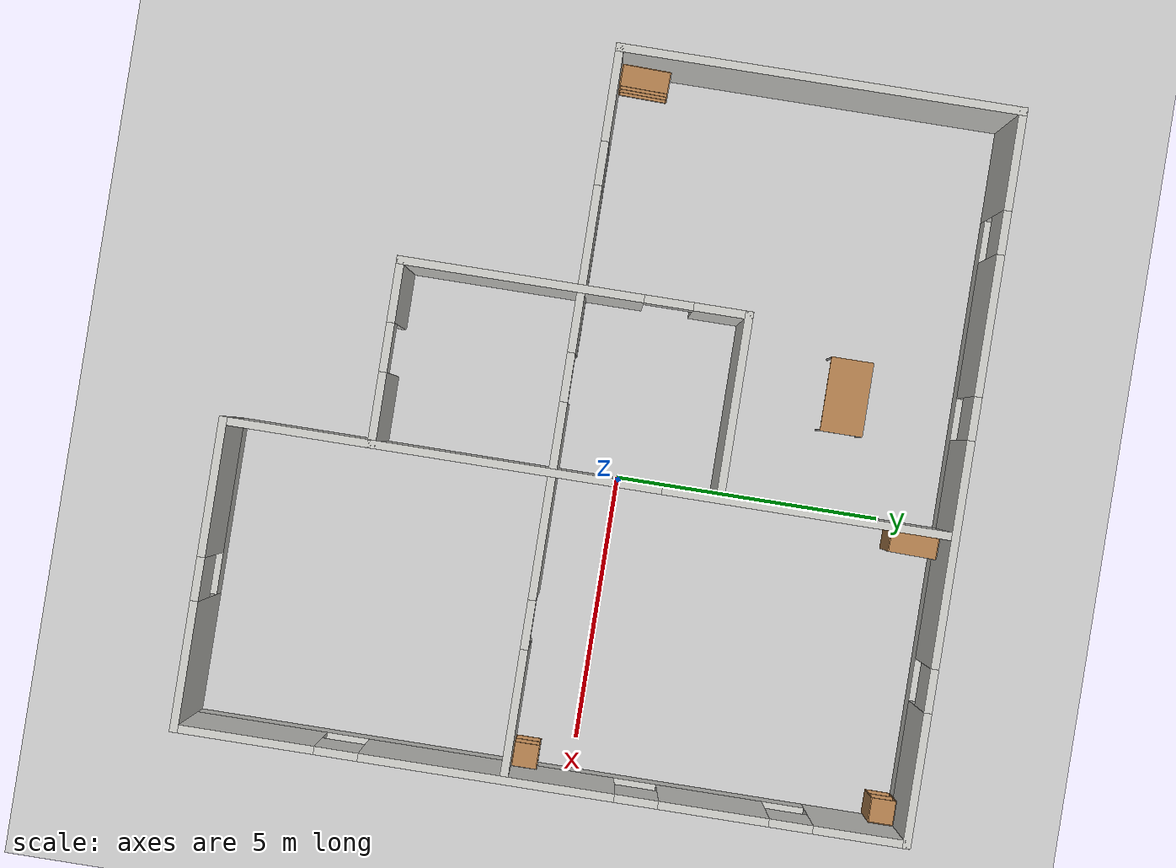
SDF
<sdf version="1.6">
 <world name="default">
  <light name="sun" type="directional">
   <pose>0 0 10 0 -0 0</pose>
   <diffuse>0.8 0.8 0.8 1</diffuse>
   <specular>0.1 0.1 0.1 1</specular>
   <attenuation>
    <range>1000</range>
    <constant>0.9</constant>
    <linear>0.01</linear>
    <quadratic>0.001</quadratic>
   </attenuation>
   <direction>-0.5 0.5 -1</direction>
  </light>
  <model name="ground_plane">
   <static>1</static>
   <link name="link">
    <collision name="collision">
     <geometry><plane><normal>0 0 1</normal><size>100 100</size></plane></geometry>
     <surface><friction><ode><mu>100</mu><mu2>50</mu2></ode></friction></surface>
    </collision>
    <visual name="visual">
     <cast_shadows>0</cast_shadows>
     <geometry><plane><normal>0 0 1</normal><size>100 100</size></plane></geometry>
     <material>
      <script><uri>file://media/materials/scripts/gazebo.material</uri><name>Gazebo/Grey</name></script>
     </material>
    </visual>
   </link>
  </model>
  <gravity>0 0 -9.8</gravity>
  <magnetic_field>6e-06 2.3e-05 -4.2e-05</magnetic_field>
  <atmosphere type="adiabatic"/>
  <physics name="default_physics" default="0" type="ode">
   <max_step_size>0.001</max_step_size>
   <real_time_factor>1</real_time_factor>
   <real_time_update_rate>1000</real_time_update_rate>
  </physics>
  <scene><ambient>0.4 0.4 0.4 1</ambient><background>0.7 0.7 0.7 1</background><shadows>1</shadows></scene>
  <spherical_coordinates>
   <surface_model>EARTH_WGS84</surface_model>
   <latitude_deg>0</latitude_deg>
   <longitude_deg>0</longitude_deg>
   <elevation>0</elevation>
   <heading_deg>0</heading_deg>
  </spherical_coordinates>
  <model name="Robot_Evi">
   <pose>-1.01369 -0.51625 0 0 -0 0</pose>
   <link name="Wall_1">
    <pose>0 6.675 0 0 -0 0</pose>
    <visual name="Wall_1_Visual_0">
     <pose>-5.80687 0 1.25 0 -0 0</pose>
     <geometry><box><size>1.88626 0.15 2.5</size></box></geometry>
     <material>
      <script><uri>file://media/materials/scripts/gazebo.material</uri><name>Gazebo/CeilingTiled</name></script>
      <ambient>1 1 1 1</ambient>
     </material>
    </visual>
    <collision name="Wall_1_Collision_0">
     <geometry><box><size>1.88626 0.15 2.5</size></box></geometry>
     <pose>-5.80687 0 1.25 0 -0 0</pose>
    </collision>
    <visual name="Wall_1_Visual_1">
     <pose>0.943132 0 0.25 0 -0 0</pose>
     <geometry><box><size>11.6137 0.15 0.5</size></box></geometry>
     <material>
      <script><uri>file://media/materials/scripts/gazebo.material</uri><name>Gazebo/CeilingTiled</name></script>
      <ambient>1 1 1 1</ambient>
     </material>
    </visual>
    <collision name="Wall_1_Collision_1">
     <geometry><box><size>11.6137 0.15 0.5</size></box></geometry>
     <pose>0.943132 0 0.25 0 -0 0</pose>
    </collision>
    <visual name="Wall_1_Visual_2">
     <pose>-2.76953 0 1.5 0 -0 0</pose>
     <geometry><box><size>2.58841 0.15 2</size></box></geometry>
     <material>
      <script><uri>file://media/materials/scripts/gazebo.material</uri><name>Gazebo/CeilingTiled</name></script>
      <ambient>1 1 1 1</ambient>
     </material>
    </visual>
    <collision name="Wall_1_Collision_2">
     <geometry><box><size>2.58841 0.15 2</size></box></geometry>
     <pose>-2.76953 0 1.5 0 -0 0</pose>
    </collision>
    <visual name="Wall_1_Visual_3">
     <pose>1.40344 0 1.5 0 -0 0</pose>
     <geometry><box><size>4.15754 0.15 2</size></box></geometry>
     <material>
      <script><uri>file://media/materials/scripts/gazebo.material</uri><name>Gazebo/CeilingTiled</name></script>
      <ambient>1 1 1 1</ambient>
     </material>
    </visual>
    <collision name="Wall_1_Collision_3">
     <geometry><box><size>4.15754 0.15 2</size></box></geometry>
     <pose>1.40344 0 1.5 0 -0 0</pose>
    </collision>
    <visual name="Wall_1_Visual_4">
     <pose>5.5161 0 1.5 0 -0 0</pose>
     <geometry><box><size>2.46779 0.15 2</size></box></geometry>
     <material>
      <script><uri>file://media/materials/scripts/gazebo.material</uri><name>Gazebo/CeilingTiled</name></script>
      <ambient>1 1 1 1</ambient>
     </material>
    </visual>
    <collision name="Wall_1_Collision_4">
     <geometry><box><size>2.46779 0.15 2</size></box></geometry>
     <pose>5.5161 0 1.5 0 -0 0</pose>
    </collision>
    <visual name="Wall_1_Visual_5">
     <pose>-4.46374 0 1.9 0 -0 0</pose>
     <geometry><box><size>0.8 0.15 1.2</size></box></geometry>
     <material>
      <script><uri>file://media/materials/scripts/gazebo.material</uri><name>Gazebo/CeilingTiled</name></script>
      <ambient>1 1 1 1</ambient>
     </material>
    </visual>
    <collision name="Wall_1_Collision_5">
     <geometry><box><size>0.8 0.15 1.2</size></box></geometry>
     <pose>-4.46374 0 1.9 0 -0 0</pose>
    </collision>
    <visual name="Wall_1_Visual_6">
     <pose>-1.07533 0 1.9 0 -0 0</pose>
     <geometry><box><size>0.8 0.15 1.2</size></box></geometry>
     <material>
      <script><uri>file://media/materials/scripts/gazebo.material</uri><name>Gazebo/CeilingTiled</name></script>
      <ambient>1 1 1 1</ambient>
     </material>
    </visual>
    <collision name="Wall_1_Collision_6">
     <geometry><box><size>0.8 0.15 1.2</size></box></geometry>
     <pose>-1.07533 0 1.9 0 -0 0</pose>
    </collision>
    <visual name="Wall_1_Visual_7">
     <pose>3.88221 0 1.9 0 -0 0</pose>
     <geometry><box><size>0.8 0.15 1.2</size></box></geometry>
     <material>
      <script><uri>file://media/materials/scripts/gazebo.material</uri><name>Gazebo/CeilingTiled</name></script>
      <ambient>1 1 1 1</ambient>
     </material>
    </visual>
    <collision name="Wall_1_Collision_7">
     <geometry><box><size>0.8 0.15 1.2</size></box></geometry>
     <pose>3.88221 0 1.9 0 -0 0</pose>
    </collision>
   </link>
   <link name="Wall_10">
    <pose>3.875 -6.675 0 0 -0 3.14159</pose>
    <visual name="Wall_10_Visual_0">
     <pose>-1.68077 0 1.25 0 -0 0</pose>
     <geometry><box><size>2.38847 0.15 2.5</size></box></geometry>
     <material>
      <script><uri>file://media/materials/scripts/gazebo.material</uri><name>Gazebo/CeilingTiled</name></script>
      <ambient>1 1 1 1</ambient>
     </material>
    </visual>
    <collision name="Wall_10_Collision_0">
     <geometry><box><size>2.38847 0.15 2.5</size></box></geometry>
     <pose>-1.68077 0 1.25 0 -0 0</pose>
    </collision>
    <visual name="Wall_10_Visual_1">
     <pose>1.19423 0 0.25 0 -0 0</pose>
     <geometry><box><size>3.36153 0.15 0.5</size></box></geometry>
     <material>
      <script><uri>file://media/materials/scripts/gazebo.material</uri><name>Gazebo/CeilingTiled</name></script>
      <ambient>1 1 1 1</ambient>
     </material>
    </visual>
    <collision name="Wall_10_Collision_1">
     <geometry><box><size>3.36153 0.15 0.5</size></box></geometry>
     <pose>1.19423 0 0.25 0 -0 0</pose>
    </collision>
    <visual name="Wall_10_Visual_2">
     <pose>1.59423 0 1.5 0 -0 0</pose>
     <geometry><box><size>2.56153 0.15 2</size></box></geometry>
     <material>
      <script><uri>file://media/materials/scripts/gazebo.material</uri><name>Gazebo/CeilingTiled</name></script>
      <ambient>1 1 1 1</ambient>
     </material>
    </visual>
    <collision name="Wall_10_Collision_2">
     <geometry><box><size>2.56153 0.15 2</size></box></geometry>
     <pose>1.59423 0 1.5 0 -0 0</pose>
    </collision>
    <visual name="Wall_10_Visual_3">
     <pose>-0.086531 0 1.9 0 -0 0</pose>
     <geometry><box><size>0.8 0.15 1.2</size></box></geometry>
     <material>
      <script><uri>file://media/materials/scripts/gazebo.material</uri><name>Gazebo/CeilingTiled</name></script>
      <ambient>1 1 1 1</ambient>
     </material>
    </visual>
    <collision name="Wall_10_Collision_3">
     <geometry><box><size>0.8 0.15 1.2</size></box></geometry>
     <pose>-0.086531 0 1.9 0 -0 0</pose>
    </collision>
   </link>
   <link name="Wall_11">
    <pose>1.075 0 0 0 -0 1.5708</pose>
    <visual name="Wall_11_Visual_0">
     <pose>-3.16298 0 1.25 0 -0 0</pose>
     <geometry><box><size>7.17404 0.15 2.5</size></box></geometry>
     <material>
      <script><uri>file://media/materials/scripts/gazebo.material</uri><name>Gazebo/CeilingTiled</name></script>
      <ambient>1 1 1 1</ambient>
     </material>
    </visual>
    <collision name="Wall_11_Collision_0">
     <geometry><box><size>7.17404 0.15 2.5</size></box></geometry>
     <pose>-3.16298 0 1.25 0 -0 0</pose>
    </collision>
    <visual name="Wall_11_Visual_1">
     <pose>4.03702 0 1.25 0 -0 0</pose>
     <geometry><box><size>5.42596 0.15 2.5</size></box></geometry>
     <material>
      <script><uri>file://media/materials/scripts/gazebo.material</uri><name>Gazebo/CeilingTiled</name></script>
      <ambient>1 1 1 1</ambient>
     </material>
    </visual>
    <collision name="Wall_11_Collision_1">
     <geometry><box><size>5.42596 0.15 2.5</size></box></geometry>
     <pose>4.03702 0 1.25 0 -0 0</pose>
    </collision>
    <visual name="Wall_11_Visual_2">
     <pose>0.87404 0 2.25 0 -0 0</pose>
     <geometry><box><size>0.9 0.15 0.5</size></box></geometry>
     <material>
      <script><uri>file://media/materials/scripts/gazebo.material</uri><name>Gazebo/CeilingTiled</name></script>
      <ambient>1 1 1 1</ambient>
     </material>
    </visual>
    <collision name="Wall_11_Collision_2">
     <geometry><box><size>0.9 0.15 0.5</size></box></geometry>
     <pose>0.87404 0 2.25 0 -0 0</pose>
    </collision>
   </link>
   <link name="Wall_13">
    <collision name="Wall_13_Collision">
     <geometry><box><size>3.5 0.15 2.5</size></box></geometry>
     <pose>0 0 1.25 0 -0 0</pose>
    </collision>
    <visual name="Wall_13_Visual">
     <pose>0 0 1.25 0 -0 0</pose>
     <geometry><box><size>3.5 0.15 2.5</size></box></geometry>
     <material>
      <script><uri>file://media/materials/scripts/gazebo.material</uri><name>Gazebo/CeilingTiled</name></script>
      <ambient>1 1 1 1</ambient>
     </material>
    </visual>
    <pose>-0.602168 2.38049 0 0 -0 3.14159</pose>
   </link>
   <link name="Wall_14">
    <pose>-2.27717 -0.794511 0 0 0 -1.5708</pose>
    <visual name="Wall_14_Visual_0">
     <pose>-2.7067 0 1.25 0 -0 0</pose>
     <geometry><box><size>1.08659 0.15 2.5</size></box></geometry>
     <material>
      <script><uri>file://media/materials/scripts/gazebo.material</uri><name>Gazebo/CeilingTiled</name></script>
      <ambient>1 1 1 1</ambient>
     </material>
    </visual>
    <collision name="Wall_14_Collision_0">
     <geometry><box><size>1.08659 0.15 2.5</size></box></geometry>
     <pose>-2.7067 0 1.25 0 -0 0</pose>
    </collision>
    <visual name="Wall_14_Visual_1">
     <pose>0.993296 0 1.25 0 -0 0</pose>
     <geometry><box><size>4.51341 0.15 2.5</size></box></geometry>
     <material>
      <script><uri>file://media/materials/scripts/gazebo.material</uri><name>Gazebo/CeilingTiled</name></script>
      <ambient>1 1 1 1</ambient>
     </material>
    </visual>
    <collision name="Wall_14_Collision_1">
     <geometry><box><size>4.51341 0.15 2.5</size></box></geometry>
     <pose>0.993296 0 1.25 0 -0 0</pose>
    </collision>
    <visual name="Wall_14_Visual_2">
     <pose>-1.71341 0 2.25 0 -0 0</pose>
     <geometry><box><size>0.9 0.15 0.5</size></box></geometry>
     <material>
      <script><uri>file://media/materials/scripts/gazebo.material</uri><name>Gazebo/CeilingTiled</name></script>
      <ambient>1 1 1 1</ambient>
     </material>
    </visual>
    <collision name="Wall_14_Collision_2">
     <geometry><box><size>0.9 0.15 0.5</size></box></geometry>
     <pose>-1.71341 0 2.25 0 -0 0</pose>
    </collision>
   </link>
   <link name="Wall_17">
    <pose>-0.602168 -3.96951 0 0 -0 0</pose>
    <visual name="Wall_17_Visual_0">
     <pose>-1.14307 0 1.25 0 -0 0</pose>
     <geometry><box><size>1.21385 0.15 2.5</size></box></geometry>
     <material>
      <script><uri>file://media/materials/scripts/gazebo.material</uri><name>Gazebo/CeilingTiled</name></script>
      <ambient>1 1 1 1</ambient>
     </material>
    </visual>
    <collision name="Wall_17_Collision_0">
     <geometry><box><size>1.21385 0.15 2.5</size></box></geometry>
     <pose>-1.14307 0 1.25 0 -0 0</pose>
    </collision>
    <visual name="Wall_17_Visual_1">
     <pose>1.05693 0 1.25 0 -0 0</pose>
     <geometry><box><size>1.38615 0.15 2.5</size></box></geometry>
     <material>
      <script><uri>file://media/materials/scripts/gazebo.material</uri><name>Gazebo/CeilingTiled</name></script>
      <ambient>1 1 1 1</ambient>
     </material>
    </visual>
    <collision name="Wall_17_Collision_1">
     <geometry><box><size>1.38615 0.15 2.5</size></box></geometry>
     <pose>1.05693 0 1.25 0 -0 0</pose>
    </collision>
    <visual name="Wall_17_Visual_2">
     <pose>-0.086148 0 2.25 0 -0 0</pose>
     <geometry><box><size>0.9 0.15 0.5</size></box></geometry>
     <material>
      <script><uri>file://media/materials/scripts/gazebo.material</uri><name>Gazebo/CeilingTiled</name></script>
      <ambient>1 1 1 1</ambient>
     </material>
    </visual>
    <collision name="Wall_17_Collision_2">
     <geometry><box><size>0.9 0.15 0.5</size></box></geometry>
     <pose>-0.086148 0 2.25 0 -0 0</pose>
    </collision>
   </link>
   <link name="Wall_2">
    <pose>6.675 0 0 0 0 -1.5708</pose>
    <visual name="Wall_2_Visual_0">
     <pose>-5.85484 0 1.25 0 -0 0</pose>
     <geometry><box><size>1.79033 0.15 2.5</size></box></geometry>
     <material>
      <script><uri>file://media/materials/scripts/gazebo.material</uri><name>Gazebo/CeilingTiled</name></script>
      <ambient>1 1 1 1</ambient>
     </material>
    </visual>
    <collision name="Wall_2_Collision_0">
     <geometry><box><size>1.79033 0.15 2.5</size></box></geometry>
     <pose>-5.85484 0 1.25 0 -0 0</pose>
    </collision>
    <visual name="Wall_2_Visual_1">
     <pose>0.895164 0 0.25 0 -0 0</pose>
     <geometry><box><size>11.7097 0.15 0.5</size></box></geometry>
     <material>
      <script><uri>file://media/materials/scripts/gazebo.material</uri><name>Gazebo/CeilingTiled</name></script>
      <ambient>1 1 1 1</ambient>
     </material>
    </visual>
    <collision name="Wall_2_Collision_1">
     <geometry><box><size>11.7097 0.15 0.5</size></box></geometry>
     <pose>0.895164 0 0.25 0 -0 0</pose>
    </collision>
    <visual name="Wall_2_Visual_2">
     <pose>-3.14973 0 1.5 0 -0 0</pose>
     <geometry><box><size>2.01988 0.15 2</size></box></geometry>
     <material>
      <script><uri>file://media/materials/scripts/gazebo.material</uri><name>Gazebo/CeilingTiled</name></script>
      <ambient>1 1 1 1</ambient>
     </material>
    </visual>
    <collision name="Wall_2_Collision_2">
     <geometry><box><size>2.01988 0.15 2</size></box></geometry>
     <pose>-3.14973 0 1.5 0 -0 0</pose>
    </collision>
    <visual name="Wall_2_Visual_3">
     <pose>0.994214 0 1.5 0 -0 0</pose>
     <geometry><box><size>4.66801 0.15 2</size></box></geometry>
     <material>
      <script><uri>file://media/materials/scripts/gazebo.material</uri><name>Gazebo/CeilingTiled</name></script>
      <ambient>1 1 1 1</ambient>
     </material>
    </visual>
    <collision name="Wall_2_Collision_3">
     <geometry><box><size>4.66801 0.15 2</size></box></geometry>
     <pose>0.994214 0 1.5 0 -0 0</pose>
    </collision>
    <visual name="Wall_2_Visual_4">
     <pose>5.43911 0 1.5 0 -0 0</pose>
     <geometry><box><size>2.62178 0.15 2</size></box></geometry>
     <material>
      <script><uri>file://media/materials/scripts/gazebo.material</uri><name>Gazebo/CeilingTiled</name></script>
      <ambient>1 1 1 1</ambient>
     </material>
    </visual>
    <collision name="Wall_2_Collision_4">
     <geometry><box><size>2.62178 0.15 2</size></box></geometry>
     <pose>5.43911 0 1.5 0 -0 0</pose>
    </collision>
    <visual name="Wall_2_Visual_5">
     <pose>-4.55967 0 1.9 0 -0 0</pose>
     <geometry><box><size>0.8 0.15 1.2</size></box></geometry>
     <material>
      <script><uri>file://media/materials/scripts/gazebo.material</uri><name>Gazebo/CeilingTiled</name></script>
      <ambient>1 1 1 1</ambient>
     </material>
    </visual>
    <collision name="Wall_2_Collision_5">
     <geometry><box><size>0.8 0.15 1.2</size></box></geometry>
     <pose>-4.55967 0 1.9 0 -0 0</pose>
    </collision>
    <visual name="Wall_2_Visual_6">
     <pose>-1.73979 0 1.9 0 -0 0</pose>
     <geometry><box><size>0.8 0.15 1.2</size></box></geometry>
     <material>
      <script><uri>file://media/materials/scripts/gazebo.material</uri><name>Gazebo/CeilingTiled</name></script>
      <ambient>1 1 1 1</ambient>
     </material>
    </visual>
    <collision name="Wall_2_Collision_6">
     <geometry><box><size>0.8 0.15 1.2</size></box></geometry>
     <pose>-1.73979 0 1.9 0 -0 0</pose>
    </collision>
    <visual name="Wall_2_Visual_7">
     <pose>3.72822 0 1.9 0 -0 0</pose>
     <geometry><box><size>0.8 0.15 1.2</size></box></geometry>
     <material>
      <script><uri>file://media/materials/scripts/gazebo.material</uri><name>Gazebo/CeilingTiled</name></script>
      <ambient>1 1 1 1</ambient>
     </material>
    </visual>
    <collision name="Wall_2_Collision_7">
     <geometry><box><size>0.8 0.15 1.2</size></box></geometry>
     <pose>3.72822 0 1.9 0 -0 0</pose>
    </collision>
   </link>
   <link name="Wall_5">
    <collision name="Wall_5_Collision">
     <geometry><box><size>7.5 0.15 2.5</size></box></geometry>
     <pose>0 0 1.25 0 -0 0</pose>
    </collision>
    <visual name="Wall_5_Visual">
     <pose>0 0 1.25 0 -0 0</pose>
     <geometry><box><size>7.5 0.15 2.5</size></box></geometry>
     <material>
      <script><uri>file://media/materials/scripts/gazebo.material</uri><name>Gazebo/CeilingTiled</name></script>
      <ambient>1 1 1 1</ambient>
     </material>
    </visual>
    <pose>-6.675 3 0 0 0 -1.5708</pose>
   </link>
   <link name="Wall_6">
    <pose>0 -0.675 0 0 -0 0</pose>
    <visual name="Wall_6_Visual_0">
     <pose>-5.85664 0 1.25 0 -0 0</pose>
     <geometry><box><size>1.78672 0.15 2.5</size></box></geometry>
     <material>
      <script><uri>file://media/materials/scripts/gazebo.material</uri><name>Gazebo/CeilingTiled</name></script>
      <ambient>1 1 1 1</ambient>
     </material>
    </visual>
    <collision name="Wall_6_Collision_0">
     <geometry><box><size>1.78672 0.15 2.5</size></box></geometry>
     <pose>-5.85664 0 1.25 0 -0 0</pose>
    </collision>
    <visual name="Wall_6_Visual_1">
     <pose>1.58816 0 1.25 0 -0 0</pose>
     <geometry><box><size>3.60831 0.15 2.5</size></box></geometry>
     <material>
      <script><uri>file://media/materials/scripts/gazebo.material</uri><name>Gazebo/CeilingTiled</name></script>
      <ambient>1 1 1 1</ambient>
     </material>
    </visual>
    <collision name="Wall_6_Collision_1">
     <geometry><box><size>3.60831 0.15 2.5</size></box></geometry>
     <pose>1.58816 0 1.25 0 -0 0</pose>
    </collision>
    <visual name="Wall_6_Visual_2">
     <pose>5.52116 0 1.25 0 -0 0</pose>
     <geometry><box><size>2.45769 0.15 2.5</size></box></geometry>
     <material>
      <script><uri>file://media/materials/scripts/gazebo.material</uri><name>Gazebo/CeilingTiled</name></script>
      <ambient>1 1 1 1</ambient>
     </material>
    </visual>
    <collision name="Wall_6_Collision_2">
     <geometry><box><size>2.45769 0.15 2.5</size></box></geometry>
     <pose>5.52116 0 1.25 0 -0 0</pose>
    </collision>
    <visual name="Wall_6_Visual_3">
     <pose>-3.03964 0 0.25 0 -0 0</pose>
     <geometry><box><size>3.84728 0.15 0.5</size></box></geometry>
     <material>
      <script><uri>file://media/materials/scripts/gazebo.material</uri><name>Gazebo/CeilingTiled</name></script>
      <ambient>1 1 1 1</ambient>
     </material>
    </visual>
    <collision name="Wall_6_Collision_3">
     <geometry><box><size>3.84728 0.15 0.5</size></box></geometry>
     <pose>-3.03964 0 0.25 0 -0 0</pose>
    </collision>
    <visual name="Wall_6_Visual_4">
     <pose>-2.63964 0 1.5 0 -0 0</pose>
     <geometry><box><size>3.04728 0.15 2</size></box></geometry>
     <material>
      <script><uri>file://media/materials/scripts/gazebo.material</uri><name>Gazebo/CeilingTiled</name></script>
      <ambient>1 1 1 1</ambient>
     </material>
    </visual>
    <collision name="Wall_6_Collision_4">
     <geometry><box><size>3.04728 0.15 2</size></box></geometry>
     <pose>-2.63964 0 1.5 0 -0 0</pose>
    </collision>
    <visual name="Wall_6_Visual_5">
     <pose>-4.56328 0 1.9 0 -0 0</pose>
     <geometry><box><size>0.8 0.15 1.2</size></box></geometry>
     <material>
      <script><uri>file://media/materials/scripts/gazebo.material</uri><name>Gazebo/CeilingTiled</name></script>
      <ambient>1 1 1 1</ambient>
     </material>
    </visual>
    <collision name="Wall_6_Collision_5">
     <geometry><box><size>0.8 0.15 1.2</size></box></geometry>
     <pose>-4.56328 0 1.9 0 -0 0</pose>
    </collision>
    <visual name="Wall_6_Visual_6">
     <pose>3.84231 0 2.25 0 -0 0</pose>
     <geometry><box><size>0.9 0.15 0.5</size></box></geometry>
     <material>
      <script><uri>file://media/materials/scripts/gazebo.material</uri><name>Gazebo/CeilingTiled</name></script>
      <ambient>1 1 1 1</ambient>
     </material>
    </visual>
    <collision name="Wall_6_Collision_6">
     <geometry><box><size>0.9 0.15 0.5</size></box></geometry>
     <pose>3.84231 0 2.25 0 -0 0</pose>
    </collision>
    <visual name="Wall_6_Visual_7">
     <pose>-0.665997 0 2.25 0 -0 0</pose>
     <geometry><box><size>0.9 0.15 0.5</size></box></geometry>
     <material>
      <script><uri>file://media/materials/scripts/gazebo.material</uri><name>Gazebo/CeilingTiled</name></script>
      <ambient>1 1 1 1</ambient>
     </material>
    </visual>
    <collision name="Wall_6_Collision_7">
     <geometry><box><size>0.9 0.15 0.5</size></box></geometry>
     <pose>-0.665997 0 2.25 0 -0 0</pose>
    </collision>
   </link>
   <static>1</static>
  </model>
  <model name="bookshelf_clone">
   <static>1</static>
   <link name="link">
    <inertial><mass>1</mass></inertial>
    <collision name="back">
     <pose>0 0.005 0.6 0 -0 0</pose>
     <geometry><box><size>0.9 0.01 1.2</size></box></geometry>
    </collision>
    <visual name="visual1">
     <pose>0 0.005 0.6 0 -0 0</pose>
     <geometry><box><size>0.9 0.01 1.2</size></box></geometry>
     <material>
      <script><uri>file://media/materials/scripts/gazebo.material</uri><name>Gazebo/Wood</name></script>
     </material>
    </visual>
    <collision name="left_side">
     <pose>0.45 -0.195 0.6 0 -0 0</pose>
     <geometry><box><size>0.02 0.4 1.2</size></box></geometry>
    </collision>
    <visual name="visual2">
     <pose>0.45 -0.195 0.6 0 -0 0</pose>
     <geometry><box><size>0.02 0.4 1.2</size></box></geometry>
     <material>
      <script><uri>file://media/materials/scripts/gazebo.material</uri><name>Gazebo/Wood</name></script>
     </material>
    </visual>
    <collision name="right_side">
     <pose>-0.45 -0.195 0.6 0 -0 0</pose>
     <geometry><box><size>0.02 0.4 1.2</size></box></geometry>
    </collision>
    <visual name="visual3">
     <pose>-0.45 -0.195 0.6 0 -0 0</pose>
     <geometry><box><size>0.02 0.4 1.2</size></box></geometry>
     <material>
      <script><uri>file://media/materials/scripts/gazebo.material</uri><name>Gazebo/Wood</name></script>
     </material>
    </visual>
    <collision name="bottom">
     <pose>0 -0.195 0.03 0 -0 0</pose>
     <geometry><box><size>0.88 0.4 0.06</size></box></geometry>
    </collision>
    <visual name="visual4">
     <pose>0 -0.195 0.03 0 -0 0</pose>
     <geometry><box><size>0.88 0.4 0.06</size></box></geometry>
     <material>
      <script><uri>file://media/materials/scripts/gazebo.material</uri><name>Gazebo/Wood</name></script>
     </material>
    </visual>
    <collision name="top">
     <pose>0 -0.195 1.19 0 -0 0</pose>
     <geometry><box><size>0.88 0.4 0.02</size></box></geometry>
    </collision>
    <visual name="visual5">
     <pose>0 -0.195 1.19 0 -0 0</pose>
     <geometry><box><size>0.88 0.4 0.02</size></box></geometry>
     <material>
      <script><uri>file://media/materials/scripts/gazebo.material</uri><name>Gazebo/Wood</name></script>
     </material>
    </visual>
    <collision name="low_shelf">
     <pose>0 -0.195 0.43 0 -0 0</pose>
     <geometry><box><size>0.88 0.4 0.02</size></box></geometry>
    </collision>
    <visual name="visual6">
     <pose>0 -0.195 0.43 0 -0 0</pose>
     <geometry><box><size>0.88 0.4 0.02</size></box></geometry>
     <material>
      <script><uri>file://media/materials/scripts/gazebo.material</uri><name>Gazebo/Wood</name></script>
     </material>
    </visual>
    <collision name="high_shelf">
     <pose>0 -0.195 0.8 0 -0 0</pose>
     <geometry><box><size>0.88 0.4 0.02</size></box></geometry>
    </collision>
    <visual name="visual7">
     <pose>0 -0.195 0.8 0 -0 0</pose>
     <geometry><box><size>0.88 0.4 0.02</size></box></geometry>
     <material>
      <script><uri>file://media/materials/scripts/gazebo.material</uri><name>Gazebo/Wood</name></script>
     </material>
    </visual>
   </link>
   <pose>0.151706 5.62246 0 0 -0 1.55</pose>
  </model>
  <model name="cabinet">
   <static>1</static>
   <link name="cabinet_bottom_plate">
    <inertial>
     <pose>0 0 -1 0 -0 0</pose>
     <inertia><ixx>2.05</ixx><ixy>0</ixy><ixz>0</ixz><iyy>2.05</iyy><iyz>0</iyz><izz>2.05</izz></inertia>
     <mass>25</mass>
    </inertial>
    <collision name="cabinet_bottom_plate_geom">
     <pose>0 0 0.01 0 -0 0</pose>
     <geometry><box><size>0.45 0.45 0.02</size></box></geometry>
    </collision>
    <visual name="cabinet_bottom_plate_geom_visual">
     <pose>0 0 0.01 0 -0 0</pose>
     <geometry><box><size>0.45 0.45 0.02</size></box></geometry>
     <material>
      <script><uri>file://media/materials/scripts/gazebo.material</uri><name>Gazebo/Wood</name></script>
     </material>
    </visual>
    <collision name="cabinet_bottom_plate_geom_cabinet_back_plate">
     <pose>0.235 0 0.51 0 -0 0</pose>
     <geometry><box><size>0.02 0.45 1.02</size></box></geometry>
    </collision>
    <visual name="cabinet_bottom_plate_geom_cabinet_back_plate_visual">
     <pose>0.235 0 0.51 0 -0 0</pose>
     <geometry><box><size>0.02 0.45 1.02</size></box></geometry>
     <material>
      <script><uri>file://media/materials/scripts/gazebo.material</uri><name>Gazebo/Wood</name></script>
     </material>
    </visual>
    <collision name="cabinet_bottom_plate_geom_cabinet_left_plate">
     <pose>0 0.235 0.51 0 -0 0</pose>
     <geometry><box><size>0.45 0.02 1.02</size></box></geometry>
    </collision>
    <visual name="cabinet_bottom_plate_geom_cabinet_left_plate_visual">
     <pose>0 0.235 0.51 0 -0 0</pose>
     <geometry><box><size>0.45 0.02 1.02</size></box></geometry>
     <material>
      <script><uri>file://media/materials/scripts/gazebo.material</uri><name>Gazebo/Wood</name></script>
     </material>
    </visual>
    <collision name="cabinet_bottom_plate_geom_cabinet_middle_plate">
     <pose>0 0 0.51 0 -0 0</pose>
     <geometry><box><size>0.45 0.45 0.02</size></box></geometry>
    </collision>
    <visual name="cabinet_bottom_plate_geom_cabinet_middle_plate_visual">
     <pose>0 0 0.51 0 -0 0</pose>
     <geometry><box><size>0.45 0.45 0.02</size></box></geometry>
     <material>
      <script><uri>file://media/materials/scripts/gazebo.material</uri><name>Gazebo/Wood</name></script>
     </material>
    </visual>
    <collision name="cabinet_bottom_plate_geom_cabinet_right_plate">
     <pose>0 -0.235 0.51 0 -0 0</pose>
     <geometry><box><size>0.45 0.02 1.02</size></box></geometry>
    </collision>
    <visual name="cabinet_bottom_plate_geom_cabinet_right_plate_visual">
     <pose>0 -0.235 0.51 0 -0 0</pose>
     <geometry><box><size>0.45 0.02 1.02</size></box></geometry>
     <material>
      <script><uri>file://media/materials/scripts/gazebo.material</uri><name>Gazebo/Wood</name></script>
     </material>
    </visual>
    <collision name="cabinet_bottom_plate_geom_cabinet_top_plate">
     <pose>0 0 1.01 0 -0 0</pose>
     <geometry><box><size>0.45 0.45 0.02</size></box></geometry>
    </collision>
    <visual name="cabinet_bottom_plate_geom_cabinet_top_plate_visual">
     <pose>0 0 1.01 0 -0 0</pose>
     <geometry><box><size>0.45 0.45 0.02</size></box></geometry>
     <material>
      <script><uri>file://media/materials/scripts/gazebo.material</uri><name>Gazebo/Wood</name></script>
     </material>
    </visual>
   </link>
   <pose>5.34352 5.84367 0 0 -0 0</pose>
  </model>
  <model name="cabinet_0">
   <static>1</static>
   <link name="cabinet_bottom_plate">
    <inertial>
     <pose>0 0 -1 0 -0 0</pose>
     <inertia><ixx>2.05</ixx><ixy>0</ixy><ixz>0</ixz><iyy>2.05</iyy><iyz>0</iyz><izz>2.05</izz></inertia>
     <mass>25</mass>
    </inertial>
    <collision name="cabinet_bottom_plate_geom">
     <pose>0 0 0.01 0 -0 0</pose>
     <geometry><box><size>0.45 0.45 0.02</size></box></geometry>
    </collision>
    <visual name="cabinet_bottom_plate_geom_visual">
     <pose>0 0 0.01 0 -0 0</pose>
     <geometry><box><size>0.45 0.45 0.02</size></box></geometry>
     <material>
      <script><uri>file://media/materials/scripts/gazebo.material</uri><name>Gazebo/Wood</name></script>
     </material>
    </visual>
    <collision name="cabinet_bottom_plate_geom_cabinet_back_plate">
     <pose>0.235 0 0.51 0 -0 0</pose>
     <geometry><box><size>0.02 0.45 1.02</size></box></geometry>
    </collision>
    <visual name="cabinet_bottom_plate_geom_cabinet_back_plate_visual">
     <pose>0.235 0 0.51 0 -0 0</pose>
     <geometry><box><size>0.02 0.45 1.02</size></box></geometry>
     <material>
      <script><uri>file://media/materials/scripts/gazebo.material</uri><name>Gazebo/Wood</name></script>
     </material>
    </visual>
    <collision name="cabinet_bottom_plate_geom_cabinet_left_plate">
     <pose>0 0.235 0.51 0 -0 0</pose>
     <geometry><box><size>0.45 0.02 1.02</size></box></geometry>
    </collision>
    <visual name="cabinet_bottom_plate_geom_cabinet_left_plate_visual">
     <pose>0 0.235 0.51 0 -0 0</pose>
     <geometry><box><size>0.45 0.02 1.02</size></box></geometry>
     <material>
      <script><uri>file://media/materials/scripts/gazebo.material</uri><name>Gazebo/Wood</name></script>
     </material>
    </visual>
    <collision name="cabinet_bottom_plate_geom_cabinet_middle_plate">
     <pose>0 0 0.51 0 -0 0</pose>
     <geometry><box><size>0.45 0.45 0.02</size></box></geometry>
    </collision>
    <visual name="cabinet_bottom_plate_geom_cabinet_middle_plate_visual">
     <pose>0 0 0.51 0 -0 0</pose>
     <geometry><box><size>0.45 0.45 0.02</size></box></geometry>
     <material>
      <script><uri>file://media/materials/scripts/gazebo.material</uri><name>Gazebo/Wood</name></script>
     </material>
    </visual>
    <collision name="cabinet_bottom_plate_geom_cabinet_right_plate">
     <pose>0 -0.235 0.51 0 -0 0</pose>
     <geometry><box><size>0.45 0.02 1.02</size></box></geometry>
    </collision>
    <visual name="cabinet_bottom_plate_geom_cabinet_right_plate_visual">
     <pose>0 -0.235 0.51 0 -0 0</pose>
     <geometry><box><size>0.45 0.02 1.02</size></box></geometry>
     <material>
      <script><uri>file://media/materials/scripts/gazebo.material</uri><name>Gazebo/Wood</name></script>
     </material>
    </visual>
    <collision name="cabinet_bottom_plate_geom_cabinet_top_plate">
     <pose>0 0 1.01 0 -0 0</pose>
     <geometry><box><size>0.45 0.45 0.02</size></box></geometry>
    </collision>
    <visual name="cabinet_bottom_plate_geom_cabinet_top_plate_visual">
     <pose>0 0 1.01 0 -0 0</pose>
     <geometry><box><size>0.45 0.45 0.02</size></box></geometry>
     <material>
      <script><uri>file://media/materials/scripts/gazebo.material</uri><name>Gazebo/Wood</name></script>
     </material>
    </visual>
   </link>
   <pose>5.35728 -0.881665 0 0 -0 0</pose>
  </model>
  <model name="table_0">
   <static>0</static>
   <link name="link">
    <collision name="surface">
     <pose>0 0 1 0 -0 0</pose>
     <geometry><box><size>1.5 0.8 0.03</size></box></geometry>
     <surface><friction><ode><mu>0.6</mu><mu2>0.6</mu2></ode></friction></surface>
    </collision>
    <visual name="visual1">
     <pose>0 0 1 0 -0 0</pose>
     <geometry><box><size>1.4 0.8 0.04</size></box></geometry>
     <material>
      <script><uri>file://media/materials/scripts/gazebo.material</uri><name>Gazebo/Wood</name></script>
     </material>
    </visual>
    <collision name="front_left_leg">
     <pose>0.68 0.38 0.5 0 -0 0</pose>
     <geometry><cylinder><radius>0.02</radius><length>1</length></cylinder></geometry>
    </collision>
    <visual name="front_left_leg">
     <pose>0.68 0.38 0.5 0 -0 0</pose>
     <geometry><cylinder><radius>0.02</radius><length>1</length></cylinder></geometry>
     <material>
      <script><uri>file://media/materials/scripts/gazebo.material</uri><name>Gazebo/Grey</name></script>
     </material>
    </visual>
    <collision name="front_right_leg">
     <pose>0.68 -0.38 0.5 0 -0 0</pose>
     <geometry><cylinder><radius>0.02</radius><length>1</length></cylinder></geometry>
    </collision>
    <visual name="front_right_leg">
     <pose>0.68 -0.38 0.5 0 -0 0</pose>
     <geometry><cylinder><radius>0.02</radius><length>1</length></cylinder></geometry>
     <material>
      <script><uri>file://media/materials/scripts/gazebo.material</uri><name>Gazebo/Grey</name></script>
     </material>
    </visual>
    <collision name="back_right_leg">
     <pose>-0.68 -0.38 0.5 0 -0 0</pose>
     <geometry><cylinder><radius>0.02</radius><length>1</length></cylinder></geometry>
    </collision>
    <visual name="back_right_leg">
     <pose>-0.68 -0.38 0.5 0 -0 0</pose>
     <geometry><cylinder><radius>0.02</radius><length>1</length></cylinder></geometry>
     <material>
      <script><uri>file://media/materials/scripts/gazebo.material</uri><name>Gazebo/Grey</name></script>
     </material>
    </visual>
    <collision name="back_left_leg">
     <pose>-0.68 0.38 0.5 0 -0 0</pose>
     <geometry><cylinder><radius>0.02</radius><length>1</length></cylinder></geometry>
    </collision>
    <visual name="back_left_leg">
     <pose>-0.68 0.38 0.5 0 -0 0</pose>
     <geometry><cylinder><radius>0.02</radius><length>1</length></cylinder></geometry>
     <material>
      <script><uri>file://media/materials/scripts/gazebo.material</uri><name>Gazebo/Grey</name></script>
     </material>
    </visual>
    <inertial>
     <inertia><ixx>1</ixx><ixy>0</ixy><ixz>0</ixz><iyy>1</iyy><iyz>0</iyz><izz>1</izz></inertia>
     <mass>1</mass>
    </inertial>
   </link>
   <pose>-2.17571 3.98401 -1e-06 -1e-06 1e-06 0</pose>
  </model>
  <model name="bookshelf_clone_clone">
   <static>1</static>
   <link name="link">
    <inertial><mass>1</mass></inertial>
    <collision name="back">
     <pose>0 0.005 0.6 0 -0 0</pose>
     <geometry><box><size>0.9 0.01 1.2</size></box></geometry>
    </collision>
    <visual name="visual1">
     <pose>0 0.005 0.6 0 -0 0</pose>
     <geometry><box><size>0.9 0.01 1.2</size></box></geometry>
     <material>
      <script><uri>file://media/materials/scripts/gazebo.material</uri><name>Gazebo/Wood</name></script>
     </material>
    </visual>
    <collision name="left_side">
     <pose>0.45 -0.195 0.6 0 -0 0</pose>
     <geometry><box><size>0.02 0.4 1.2</size></box></geometry>
    </collision>
    <visual name="visual2">
     <pose>0.45 -0.195 0.6 0 -0 0</pose>
     <geometry><box><size>0.02 0.4 1.2</size></box></geometry>
     <material>
      <script><uri>file://media/materials/scripts/gazebo.material</uri><name>Gazebo/Wood</name></script>
     </material>
    </visual>
    <collision name="right_side">
     <pose>-0.45 -0.195 0.6 0 -0 0</pose>
     <geometry><box><size>0.02 0.4 1.2</size></box></geometry>
    </collision>
    <visual name="visual3">
     <pose>-0.45 -0.195 0.6 0 -0 0</pose>
     <geometry><box><size>0.02 0.4 1.2</size></box></geometry>
     <material>
      <script><uri>file://media/materials/scripts/gazebo.material</uri><name>Gazebo/Wood</name></script>
     </material>
    </visual>
    <collision name="bottom">
     <pose>0 -0.195 0.03 0 -0 0</pose>
     <geometry><box><size>0.88 0.4 0.06</size></box></geometry>
    </collision>
    <visual name="visual4">
     <pose>0 -0.195 0.03 0 -0 0</pose>
     <geometry><box><size>0.88 0.4 0.06</size></box></geometry>
     <material>
      <script><uri>file://media/materials/scripts/gazebo.material</uri><name>Gazebo/Wood</name></script>
     </material>
    </visual>
    <collision name="top">
     <pose>0 -0.195 1.19 0 -0 0</pose>
     <geometry><box><size>0.88 0.4 0.02</size></box></geometry>
    </collision>
    <visual name="visual5">
     <pose>0 -0.195 1.19 0 -0 0</pose>
     <geometry><box><size>0.88 0.4 0.02</size></box></geometry>
     <material>
      <script><uri>file://media/materials/scripts/gazebo.material</uri><name>Gazebo/Wood</name></script>
     </material>
    </visual>
    <collision name="low_shelf">
     <pose>0 -0.195 0.43 0 -0 0</pose>
     <geometry><box><size>0.88 0.4 0.02</size></box></geometry>
    </collision>
    <visual name="visual6">
     <pose>0 -0.195 0.43 0 -0 0</pose>
     <geometry><box><size>0.88 0.4 0.02</size></box></geometry>
     <material>
      <script><uri>file://media/materials/scripts/gazebo.material</uri><name>Gazebo/Wood</name></script>
     </material>
    </visual>
    <collision name="high_shelf">
     <pose>0 -0.195 0.8 0 -0 0</pose>
     <geometry><box><size>0.88 0.4 0.02</size></box></geometry>
    </collision>
    <visual name="visual7">
     <pose>0 -0.195 0.8 0 -0 0</pose>
     <geometry><box><size>0.88 0.4 0.02</size></box></geometry>
     <material>
      <script><uri>file://media/materials/scripts/gazebo.material</uri><name>Gazebo/Wood</name></script>
     </material>
    </visual>
   </link>
   <pose>-7.59844 -0.650257 0 0 -0 1.55</pose>
  </model>
 </world>
</sdf>
